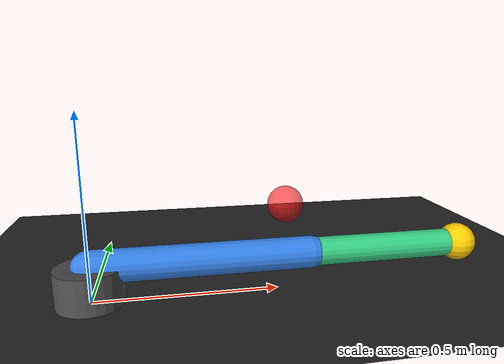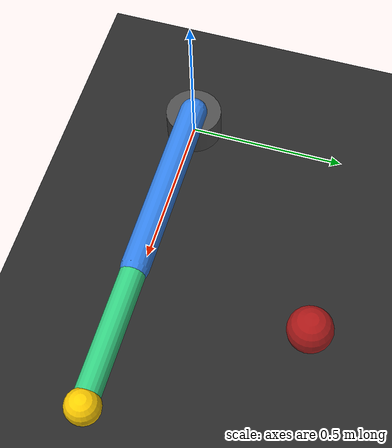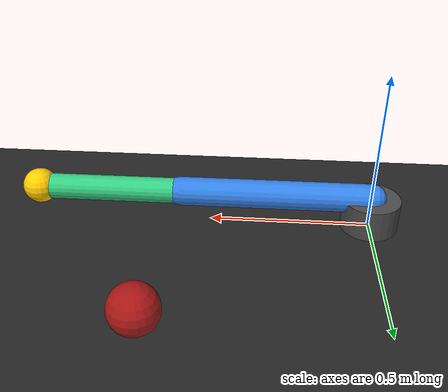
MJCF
<mujoco model="vision_estimate_arm_reaching">
  <option timestep="0.002" gravity="0 0 0"/>
  <visual><global azimuth="90" elevation="-90" offwidth="1200" offheight="760"/></visual>
  <worldbody>
    <light pos="0 0 3"/>
    <geom name="floor" type="plane" size="2 2 0.1" rgba="0.15 0.15 0.15 1"/>
    <body name="base" pos="0 0 0.05">
      <geom type="cylinder" size="0.09 0.05" rgba="0.3 0.3 0.3 1" contype="0" conaffinity="0"/>
      <body name="link1" pos="0 0 0.05">
        <joint name="shoulder" type="hinge" axis="0 0 1" range="-180 180" damping="1"/>
        <geom type="capsule" fromto="0 0 0 0.6 0 0" size="0.045" rgba="0.2 0.5 0.9 1" contype="0" conaffinity="0"/>
        <body name="link2" pos="0.6 0 0">
          <joint name="elbow" type="hinge" axis="0 0 1" range="-180 180" damping="1"/>
          <geom type="capsule" fromto="0 0 0 0.45 0 0" size="0.04" rgba="0.2 0.8 0.5 1" contype="0" conaffinity="0"/>
          <site name="end_effector" pos="0.45 0 0" size="0.055" rgba="1 0.8 0 1"/>
        </body>
      </body>
    </body>
    <!-- 赤は本当の目標。制御指令に推定座標を使っても、この位置は変えない。 -->
    <site name="target" pos="0.65 0.55 0.1" size="0.07" rgba="1 0.1 0.1 0.65"/>
    <!-- 紫は画像認識が推定した位置。正解座標方式では赤と重なる。 -->
    <site name="estimate" pos="0.65 0.55 0.11" size="0.035" rgba="0.8 0.2 1 0.85"/>
    <!-- 到達領域全体が入るよう、中心を作業領域中央へ移して高度を上げる。 -->
    <!-- 左右の操作パネルで描画領域が縦長になっても、横1.05mの全伸展を収める。 -->
    <camera name="overview" pos="0 0.45 6.0" xyaxes="1 0 0 0 1 0" fovy="45"/>
    <!-- パネルのない横長MP4では、アームを大きく映す専用カメラを使う。 -->
    <camera name="recording" pos="0 0.45 3.2" xyaxes="1 0 0 0 1 0" fovy="45"/>
  </worldbody>
  <actuator>
    <position name="shoulder_position" joint="shoulder" kp="80" kv="8" ctrlrange="-3.1416 3.1416"/>
    <position name="elbow_position" joint="elbow" kp="60" kv="6" ctrlrange="-3.1416 3.1416"/>
  </actuator>
</mujoco>
